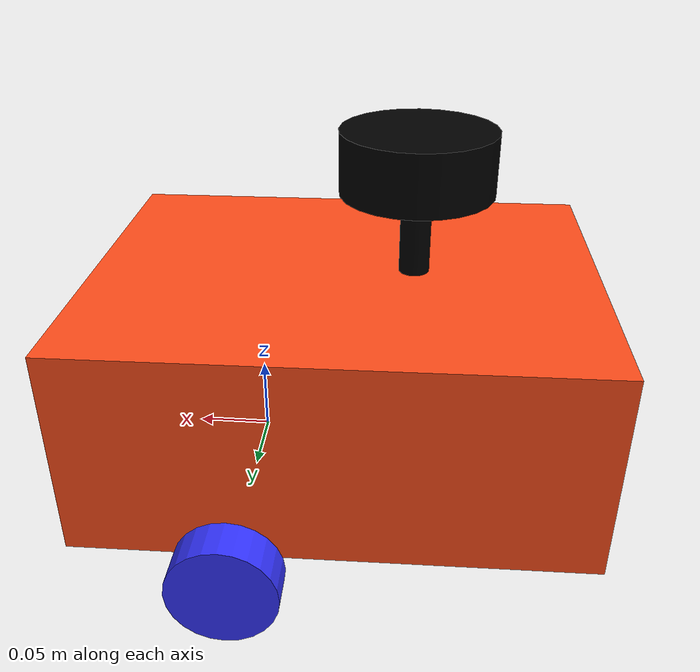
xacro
<?xml version="1.0"?>
<robot xmlns:xacro="http://www.ros.org/wiki/xacro"  name="robot">

    <xacro:arg name="use_ros2_control" default="true"/>

    <xacro:include filename="robot_core.xacro"/>

    <xacro:if value="$(arg use_ros2_control)">
        <xacro:include filename="ros2_control.xacro" />
    </xacro:if>
    <xacro:unless value="$(arg use_ros2_control)">
        <xacro:include filename="gazebo_control.xacro" />
    </xacro:unless>

    <xacro:include filename="lidar.xacro" />

</robot>

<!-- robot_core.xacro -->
<robot xmlns:xacro="http://www.ros.org/wiki/xacro" >

    <xacro:include filename="inertial_macros.xacro"/>

    <xacro:property name="chassis_length" value="0.335"/>
    <xacro:property name="chassis_width" value="0.265"/>
    <xacro:property name="chassis_height" value="0.138"/>
    <xacro:property name="chassis_mass" value="1.0"/>
    <xacro:property name="wheel_radius" value="0.034"/>
    <xacro:property name="wheel_thickness" value="0.026"/>
    <xacro:property name="wheel_mass" value="0.05"/>
    <xacro:property name="wheel_offset_x" value="0.226"/>
    <xacro:property name="wheel_offset_y" value="0.166"/>
    <xacro:property name="wheel_offset_z" value="0.01"/>
    <xacro:property name="caster_wheel_radius" value="0.01"/>
    <xacro:property name="caster_wheel_mass" value="0.01"/>
    <xacro:property name="caster_wheel_offset_x" value="0.075"/>
    <xacro:property name="caster_wheel_offset_z" value="${wheel_offset_z - wheel_radius + caster_wheel_radius}"/>

    <material name="white">
        <color rgba="1 1 1 1"/>
    </material>

    <material name="orange">
        <color rgba="1 0.3 0.1 1"/>
    </material>

    <material name="blue">
        <color rgba="0.2 0.2 1 1"/>
    </material>

    <material name="black">
        <color rgba="0 0 0 1"/>
    </material>

    <material name="red">
        <color rgba="1 0 0 1"/>
    </material>

    <!-- BASE LINK -->
    <link name="base_link">
    </link>

    <!-- CHASSIS LINK -->
    <joint name="chassis_joint" type="fixed">
        <parent link="base_link"/>
        <child link="chassis"/>
        <origin xyz="${-wheel_offset_x} 0 ${-wheel_offset_z}"/>
    </joint>

    <link name="chassis">
        <visual>
            <origin xyz="${chassis_length/2} 0 ${chassis_height/2}"/>
            <geometry>
                <box size="${chassis_length} ${chassis_width} ${chassis_height}"/>
            </geometry>
            <material name="orange"/>
        </visual>
        <collision>
            <origin xyz="${chassis_length/2} 0 ${chassis_height/2}"/>
            <geometry>
                <box size="${chassis_length} ${chassis_width} ${chassis_height}"/>
            </geometry>
        </collision>
        <xacro:inertial_box mass="0.5" x="${chassis_length}" y="${chassis_width}" z="${chassis_height}">
            <origin xyz="${chassis_length/2} 0 ${chassis_height/2}" rpy="0 0 0"/>
        </xacro:inertial_box>
    </link>

    <!-- LEFT WHEEL LINK -->
    <joint name="left_wheel_joint" type="continuous">
        <parent link="base_link"/>
        <child link="left_wheel"/>
        <origin xyz="0 ${wheel_offset_y} 0" rpy="-${pi/2} 0 0" />
        <axis xyz="0 0 1"/>
    </joint>

    <link name="left_wheel">
        <visual>
            <geometry>
                <cylinder radius="${wheel_radius}" length="${wheel_thickness}"/>
            </geometry>
            <material name="blue"/>
        </visual>
        <collision>
            <geometry>
                <sphere radius="${wheel_radius}"/>
            </geometry>
        </collision>
        <xacro:inertial_cylinder mass="${wheel_mass}" length="${wheel_thickness}" radius="${wheel_radius}">
            <origin xyz="0 0 0" rpy="0 0 0"/>
        </xacro:inertial_cylinder>
    </link>

    <!-- RIGHT WHEEL LINK -->
    <joint name="right_wheel_joint" type="continuous">
        <parent link="base_link"/>
        <child link="right_wheel"/>
        <origin xyz="0 ${-wheel_offset_y} 0" rpy="${pi/2} 0 0" />
        <axis xyz="0 0 -1"/>
    </joint>

    <link name="right_wheel">
        <visual>
            <geometry>
                <cylinder radius="${wheel_radius}" length="${wheel_thickness}"/>
            </geometry>
            <material name="blue"/>
        </visual>
        <collision>
            <geometry>
                <sphere radius="${wheel_radius}"/>
            </geometry>
        </collision>
        <xacro:inertial_cylinder mass="${wheel_mass}" length="${wheel_thickness}" radius="${wheel_radius}">
            <origin xyz="0 0 0" rpy="0 0 0"/>
        </xacro:inertial_cylinder>
    </link>

    <!-- CASTER WHEEL LINK -->
    <joint name="caster_wheel_joint" type="fixed">
        <parent link="chassis"/>
        <child link="caster_wheel"/>
        <origin xyz="${caster_wheel_offset_x} 0 ${caster_wheel_offset_z}"/>
    </joint>

    <link name="caster_wheel">
        <visual>
            <geometry>
                <sphere radius="${caster_wheel_radius}"/>
            </geometry>
            <material name="white"/>
        </visual>
        <collision>
            <geometry>
                <sphere radius="${caster_wheel_radius}"/>
            </geometry>
        </collision>
        <xacro:inertial_sphere mass="${caster_wheel_mass}" radius="${caster_wheel_radius}">
            <origin xyz="0 0 0" rpy="0 0 0"/>
        </xacro:inertial_sphere>
    </link>

    <gazebo reference="caster_wheel">
        <mu1 value="0.0"/>
        <mu2 value="0.0"/>
    </gazebo>

</robot>

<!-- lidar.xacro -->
<robot xmlns:xacro="http://www.ros.org/wiki/xacro" >

    <joint name="laser_joint" type="fixed">
        <parent link="chassis"/>
        <child link="laser_frame"/>
        <origin xyz="0.122 0 0.212" rpy="0 0 0"/>
    </joint>

    <link name="laser_frame">
        <visual>
            <geometry>
                <cylinder radius="0.05" length="0.04"/>
            </geometry>
            <material name="black"/>
        </visual>
         <visual>
            <origin xyz="0 0 -0.05"/>
            <geometry>
                <cylinder radius="0.01" length="0.1"/>
            </geometry>
            <material name="black"/>
        </visual>
        <collision>
            <geometry>
                <cylinder radius="0.05" length="0.04"/>
            </geometry>
        </collision>
        <xacro:inertial_cylinder mass="0.1" length="0.04" radius="0.05">
            <origin xyz="0 0 0" rpy="0 0 0"/>
        </xacro:inertial_cylinder>
    </link>

    <gazebo>
        <plugin
            filename="gz-sim-sensors-system"
            name="gz::sim::v8::systems::Sensors">
            <render_engine>ogre2</render_engine>
        </plugin>
    </gazebo>

    <gazebo reference="laser_frame">
        <sensor name="laser" type="gpu_lidar">
            <pose relative_to='laser_frame'>0 0 0 0 0 0</pose>

            <topic>scan</topic>
            <update_rate>3</update_rate>

            <visualize>true</visualize>
            <always_on>1</always_on>

            <gz_frame_id>laser_frame</gz_frame_id>

            <lidar>
                <scan>
                    <horizontal>
                        <samples>360</samples>
                        <resolution>1.0</resolution>
                        <min_angle>-3.14159</min_angle>
                        <max_angle>3.14159</max_angle>
                    </horizontal>
                </scan>

                <range>
                    <min>0.12</min>
                    <max>12.0</max>
                    <resolution>0.01</resolution>
                </range>
            </lidar>
        </sensor>
    </gazebo>

</robot>
